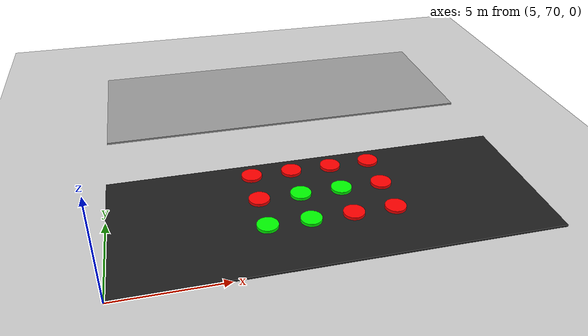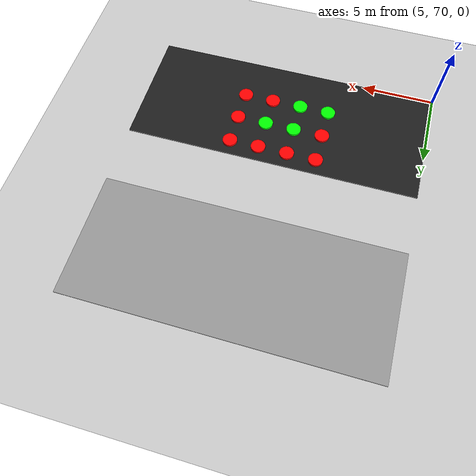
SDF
<sdf version="1.6">
 <world name="default">
  <model name="ground_plane">
   <pose>15 45 0 0 -0 0</pose>
   <static>1</static>
   <link name="link">
    <collision name="collision">
     <geometry><plane><normal>0 0 1</normal><size>100 100</size></plane></geometry>
     <surface><friction><ode><mu>100</mu><mu2>50</mu2></ode></friction></surface>
    </collision>
    <visual name="visual">
     <cast_shadows>0</cast_shadows>
     <geometry><plane><normal>0 0 1</normal><size>30 120</size></plane></geometry>
     <material>
      <script><uri>file://media/materials/scripts/gazebo.material</uri><name>Gazebo/Grey</name></script>
     </material>
    </visual>
   </link>
  </model>
  <model name="platform">
   <link name="link_0">
    <inertial>
     <mass>1</mass>
     <inertia>
      <ixx>0.166667</ixx>
      <ixy>0</ixy>
      <ixz>0</ixz>
      <iyy>0.166667</iyy>
      <iyz>0</iyz>
      <izz>0.166667</izz>
     </inertia>
    </inertial>
    <visual name="visual">
     <geometry><box><size>20 8 0.1</size></box></geometry>
     <material>
      <lighting>1</lighting>
      <script><uri>file://media/materials/scripts/gazebo.material</uri><name>Gazebo/Black</name></script>
      <shader type="pixel"><normal_map>__default__</normal_map></shader>
      <ambient>0.3 0.3 0.3 1</ambient>
      <diffuse>0.7 0.7 0.7 1</diffuse>
      <specular>0.01 0.01 0.01 1</specular>
      <emissive>0 0 0 1</emissive>
     </material>
    </visual>
    <collision name="collision">
     <geometry><box><size>20 8 0.1</size></box></geometry>
     <surface>
      <friction>
       <ode><mu>1</mu><mu2>1</mu2><fdir1>0 0 0</fdir1><slip1>0</slip1><slip2>0</slip2></ode>
       <torsional>
        <coefficient>1</coefficient>
        <patch_radius>0</patch_radius>
        <surface_radius>0</surface_radius>
        <use_patch_radius>1</use_patch_radius>
        <ode><slip>0</slip></ode>
       </torsional>
      </friction>
      <bounce><restitution_coefficient>0</restitution_coefficient><threshold>1e+06</threshold></bounce>
      <contact>
       <collide_without_contact>0</collide_without_contact>
       <collide_without_contact_bitmask>1</collide_without_contact_bitmask>
       <collide_bitmask>1</collide_bitmask>
       <ode>
        <soft_cfm>0</soft_cfm>
        <soft_erp>0.2</soft_erp>
        <kp>1e+13</kp>
        <kd>1</kd>
        <max_vel>0.01</max_vel>
        <min_depth>0</min_depth>
       </ode>
       <bullet>
        <split_impulse>1</split_impulse>
        <split_impulse_penetration_threshold>-0.01</split_impulse_penetration_threshold>
        <soft_cfm>0</soft_cfm>
        <soft_erp>0.2</soft_erp>
        <kp>1e+13</kp>
        <kd>1</kd>
       </bullet>
      </contact>
     </surface>
    </collision>
   </link>
   <static>0</static>
   <pose>15.0041 73.9996 0.049979 -8e-06 1e-06 -0.000229</pose>
  </model>
  <model name="platform_0">
   <link name="link_0">
    <inertial>
     <mass>1</mass>
     <inertia>
      <ixx>0.166667</ixx>
      <ixy>0</ixy>
      <ixz>0</ixz>
      <iyy>0.166667</iyy>
      <iyz>0</iyz>
      <izz>0.166667</izz>
     </inertia>
    </inertial>
    <visual name="visual">
     <geometry><box><size>20 8 0.1</size></box></geometry>
     <material>
      <lighting>1</lighting>
      <script><uri>file://media/materials/scripts/gazebo.material</uri><name>Gazebo/Grey</name></script>
      <shader type="pixel"><normal_map>__default__</normal_map></shader>
      <ambient>0.3 0.3 0.3 1</ambient>
      <diffuse>0.7 0.7 0.7 1</diffuse>
      <specular>0.01 0.01 0.01 1</specular>
      <emissive>0 0 0 1</emissive>
     </material>
    </visual>
    <collision name="collision">
     <geometry><box><size>20 8 0.1</size></box></geometry>
     <surface>
      <friction>
       <ode><mu>1</mu><mu2>1</mu2><fdir1>0 0 0</fdir1><slip1>0</slip1><slip2>0</slip2></ode>
       <torsional>
        <coefficient>1</coefficient>
        <patch_radius>0</patch_radius>
        <surface_radius>0</surface_radius>
        <use_patch_radius>1</use_patch_radius>
        <ode><slip>0</slip></ode>
       </torsional>
      </friction>
      <bounce><restitution_coefficient>0</restitution_coefficient><threshold>1e+06</threshold></bounce>
      <contact>
       <collide_without_contact>0</collide_without_contact>
       <collide_without_contact_bitmask>1</collide_without_contact_bitmask>
       <collide_bitmask>1</collide_bitmask>
       <ode>
        <soft_cfm>0</soft_cfm>
        <soft_erp>0.2</soft_erp>
        <kp>1e+13</kp>
        <kd>1</kd>
        <max_vel>0.01</max_vel>
        <min_depth>0</min_depth>
       </ode>
       <bullet>
        <split_impulse>1</split_impulse>
        <split_impulse_penetration_threshold>-0.01</split_impulse_penetration_threshold>
        <soft_cfm>0</soft_cfm>
        <soft_erp>0.2</soft_erp>
        <kp>1e+13</kp>
        <kd>1</kd>
       </bullet>
      </contact>
     </surface>
    </collision>
   </link>
   <static>0</static>
   <pose>15.0041 85.9996 0.049979 -8e-06 1e-06 -0.000229</pose>
  </model>
  <model name="red_0">
   <static>1</static>
   <link name="link">
    <visual name="visual"><geometry><mesh><uri>model://red/meshes/red.dae</uri></mesh></geometry></visual>
   </link>
   <pose>12 75 0.15 0 -0 0</pose>
  </model>
  <model name="red_1">
   <static>1</static>
   <link name="link">
    <visual name="visual"><geometry><mesh><uri>model://red/meshes/red.dae</uri></mesh></geometry></visual>
   </link>
   <pose>12 77 0.15 0 -0 0</pose>
  </model>
  <model name="red_2">
   <static>1</static>
   <link name="link">
    <visual name="visual"><geometry><mesh><uri>model://red/meshes/red.dae</uri></mesh></geometry></visual>
   </link>
   <pose>14 77 0.15 0 -0 0</pose>
  </model>
  <model name="red_3">
   <static>1</static>
   <link name="link">
    <visual name="visual"><geometry><mesh><uri>model://red/meshes/red.dae</uri></mesh></geometry></visual>
   </link>
   <pose>16 73 0.15 0 -0 0</pose>
  </model>
  <model name="red_4">
   <static>1</static>
   <link name="link">
    <visual name="visual"><geometry><mesh><uri>model://red/meshes/red.dae</uri></mesh></geometry></visual>
   </link>
   <pose>16 77 0.15 0 -0 0</pose>
  </model>
  <model name="red_6">
   <static>1</static>
   <link name="link">
    <visual name="visual"><geometry><mesh><uri>model://red/meshes/red.dae</uri></mesh></geometry></visual>
   </link>
   <pose>18 73 0.15 0 -0 0</pose>
  </model>
  <model name="red_7">
   <static>1</static>
   <link name="link">
    <visual name="visual"><geometry><mesh><uri>model://red/meshes/red.dae</uri></mesh></geometry></visual>
   </link>
   <pose>18 75 0.15 0 -0 0</pose>
  </model>
  <model name="red_8">
   <static>1</static>
   <link name="link">
    <visual name="visual"><geometry><mesh><uri>model://red/meshes/red.dae</uri></mesh></geometry></visual>
   </link>
   <pose>18 77 0.15 0 -0 0</pose>
  </model>
  <model name="green">
   <static>1</static>
   <link name="link">
    <visual name="visual"><geometry><mesh><uri>model://green/meshes/green.dae</uri></mesh></geometry></visual>
   </link>
   <pose>12 73 0.15 0 -0 0</pose>
  </model>
  <model name="green_1">
   <static>1</static>
   <link name="link">
    <visual name="visual"><geometry><mesh><uri>model://green/meshes/green.dae</uri></mesh></geometry></visual>
   </link>
   <pose>14 73 0.15 0 -0 0</pose>
  </model>
  <model name="green_2">
   <static>1</static>
   <link name="link">
    <visual name="visual"><geometry><mesh><uri>model://green/meshes/green.dae</uri></mesh></geometry></visual>
   </link>
   <pose>14 75 0.15 0 -0 0</pose>
  </model>
  <model name="green_4">
   <static>1</static>
   <link name="link">
    <visual name="visual"><geometry><mesh><uri>model://green/meshes/green.dae</uri></mesh></geometry></visual>
   </link>
   <pose>16 75 0.15 0 -0 0</pose>
  </model>
 </world>
</sdf>
